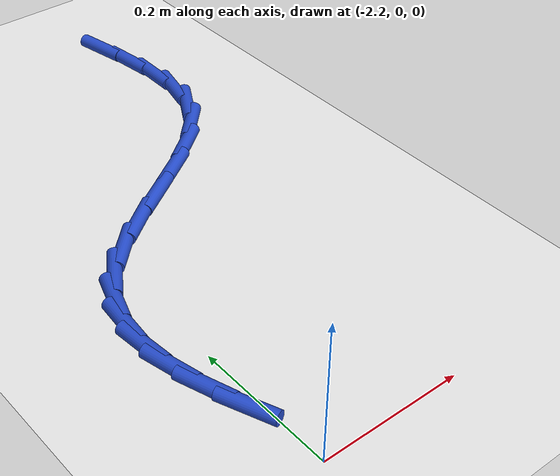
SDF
<sdf version="1.6">
 <world name="default">
  <model name="ground_plane">
   <static>1</static>
   <link name="link">
    <collision name="collision">
     <geometry><plane><normal>0 0 1</normal><size>100 100</size></plane></geometry>
     <surface><friction><ode><mu>100</mu><mu2>50</mu2></ode></friction></surface>
    </collision>
    <visual name="visual">
     <cast_shadows>0</cast_shadows>
     <geometry><plane><normal>0 0 1</normal><size>100 100</size></plane></geometry>
     <material>
      <script><uri>file://media/materials/scripts/gazebo.material</uri><name>Gazebo/WhiteGlow</name></script>
     </material>
    </visual>
   </link>
  </model>
  <model name="line">
   <link name="link_53">
    <pose>-1.9112662485996392 0.8600982613227794 0.01 0 1.57 -1.3769821323612723</pose>
    <collision name="collision">
     <geometry><cylinder><radius>0.01</radius><length>0.08</length></cylinder></geometry>
    </collision>
    <visual name="visual">
     <material>
      <script><name>Gazebo/Blue</name><uri>file://media/materials/scripts/gazebo.material</uri></script>
     </material>
     <geometry><cylinder><radius>0.01</radius><length>0.08</length></cylinder></geometry>
    </visual>
   </link>
   <link name="link_54">
    <pose>-1.8994473148128097 0.7998829953209661 0.01 0 1.57 -1.4437243510443445</pose>
    <collision name="collision">
     <geometry><cylinder><radius>0.01</radius><length>0.08</length></cylinder></geometry>
    </collision>
    <visual name="visual">
     <material>
      <script><name>Gazebo/Blue</name><uri>file://media/materials/scripts/gazebo.material</uri></script>
     </material>
     <geometry><cylinder><radius>0.01</radius><length>0.08</length></cylinder></geometry>
    </visual>
   </link>
   <link name="link_55">
    <pose>-1.8920790514987167 0.7422104726554709 0.01 0 1.57 1.5618061177882698</pose>
    <collision name="collision">
     <geometry><cylinder><radius>0.01</radius><length>0.08</length></cylinder></geometry>
    </collision>
    <visual name="visual">
     <material>
      <script><name>Gazebo/Blue</name><uri>file://media/materials/scripts/gazebo.material</uri></script>
     </material>
     <geometry><cylinder><radius>0.01</radius><length>0.08</length></cylinder></geometry>
    </visual>
   </link>
   <link name="link_56">
    <pose>-1.892566571162664 0.6879840882510012 0.01 0 1.57 1.3394646800558065</pose>
    <collision name="collision">
     <geometry><cylinder><radius>0.01</radius><length>0.08</length></cylinder></geometry>
    </collision>
    <visual name="visual">
     <material>
      <script><name>Gazebo/Blue</name><uri>file://media/materials/scripts/gazebo.material</uri></script>
     </material>
     <geometry><cylinder><radius>0.01</radius><length>0.08</length></cylinder></geometry>
    </visual>
   </link>
   <link name="link_57">
    <pose>-1.9043149863099567 0.6381072370322626 0.01 0 1.57 1.040786274864794</pose>
    <collision name="collision">
     <geometry><cylinder><radius>0.01</radius><length>0.08</length></cylinder></geometry>
    </collision>
    <visual name="visual">
     <material>
      <script><name>Gazebo/Blue</name><uri>file://media/materials/scripts/gazebo.material</uri></script>
     </material>
     <geometry><cylinder><radius>0.01</radius><length>0.08</length></cylinder></geometry>
    </visual>
   </link>
   <link name="link_58">
    <pose>-1.9304994852530675 0.5934184927974565 0.01 0 1.57 0.7875707036933844</pose>
    <collision name="collision">
     <geometry><cylinder><radius>0.01</radius><length>0.08</length></cylinder></geometry>
    </collision>
    <visual name="visual">
     <material>
      <script><name>Gazebo/Blue</name><uri>file://media/materials/scripts/gazebo.material</uri></script>
     </material>
     <geometry><cylinder><radius>0.01</radius><length>0.08</length></cylinder></geometry>
    </visual>
   </link>
   <link name="link_59">
    <pose>-1.9701558583655765 0.5535894341097335 0.01 0 1.57 0.6418659208136365</pose>
    <collision name="collision">
     <geometry><cylinder><radius>0.01</radius><length>0.08</length></cylinder></geometry>
    </collision>
    <visual name="visual">
     <material>
      <script><name>Gazebo/Blue</name><uri>file://media/materials/scripts/gazebo.material</uri></script>
     </material>
     <geometry><cylinder><radius>0.01</radius><length>0.08</length></cylinder></geometry>
    </visual>
   </link>
   <link name="link_60">
    <pose>-2.018733128095006 0.5172804439089392 0.01 0 1.57 0.5740225865184843</pose>
    <collision name="collision">
     <geometry><cylinder><radius>0.01</radius><length>0.08</length></cylinder></geometry>
    </collision>
    <visual name="visual">
     <material>
      <script><name>Gazebo/Blue</name><uri>file://media/materials/scripts/gazebo.material</uri></script>
     </material>
     <geometry><cylinder><radius>0.01</radius><length>0.08</length></cylinder></geometry>
    </visual>
   </link>
   <link name="link_61">
    <pose>-2.0715616306568503 0.48311844464880666 0.01 0 1.57 0.5672209846844791</pose>
    <collision name="collision">
     <geometry><cylinder><radius>0.01</radius><length>0.08</length></cylinder></geometry>
    </collision>
    <visual name="visual">
     <material>
      <script><name>Gazebo/Blue</name><uri>file://media/materials/scripts/gazebo.material</uri></script>
     </material>
     <geometry><cylinder><radius>0.01</radius><length>0.08</length></cylinder></geometry>
    </visual>
   </link>
   <link name="link_62">
    <pose>-2.123971702266603 0.4497303587830698 0.01 0 1.57 0.6228450337936121</pose>
    <collision name="collision">
     <geometry><cylinder><radius>0.01</radius><length>0.08</length></cylinder></geometry>
    </collision>
    <visual name="visual">
     <material>
      <script><name>Gazebo/Blue</name><uri>file://media/materials/scripts/gazebo.material</uri></script>
     </material>
     <geometry><cylinder><radius>0.01</radius><length>0.08</length></cylinder></geometry>
    </visual>
   </link>
   <link name="link_63">
    <pose>-2.17129367913976 0.41574310876546167 0.01 0 1.57 0.7631187010094361</pose>
    <collision name="collision">
     <geometry><cylinder><radius>0.01</radius><length>0.08</length></cylinder></geometry>
    </collision>
    <visual name="visual">
     <material>
      <script><name>Gazebo/Blue</name><uri>file://media/materials/scripts/gazebo.material</uri></script>
     </material>
     <geometry><cylinder><radius>0.01</radius><length>0.08</length></cylinder></geometry>
    </visual>
   </link>
   <link name="link_64">
    <pose>-2.2088854138964997 0.37979018072035164 0.01 0 1.57 0.9925573642246486</pose>
    <collision name="collision">
     <geometry><cylinder><radius>0.01</radius><length>0.08</length></cylinder></geometry>
    </collision>
    <visual name="visual">
     <material>
      <script><name>Gazebo/Blue</name><uri>file://media/materials/scripts/gazebo.material</uri></script>
     </material>
     <geometry><cylinder><radius>0.01</radius><length>0.08</length></cylinder></geometry>
    </visual>
   </link>
   <link name="link_65">
    <pose>-2.23419898649164 0.3410046107175579 0.01 0 1.57 1.2460910407652783</pose>
    <collision name="collision">
     <geometry><cylinder><radius>0.01</radius><length>0.08</length></cylinder></geometry>
    </collision>
    <visual name="visual">
     <material>
      <script><name>Gazebo/Blue</name><uri>file://media/materials/scripts/gazebo.material</uri></script>
     </material>
     <geometry><cylinder><radius>0.01</radius><length>0.08</length></cylinder></geometry>
    </visual>
   </link>
   <link name="link_66">
    <pose>-2.2482168544438603 0.2993615592182069 0.01 0 1.57 1.4800525581453596</pose>
    <collision name="collision">
     <geometry><cylinder><radius>0.01</radius><length>0.08</length></cylinder></geometry>
    </collision>
    <visual name="visual">
     <material>
      <script><name>Gazebo/Blue</name><uri>file://media/materials/scripts/gazebo.material</uri></script>
     </material>
     <geometry><cylinder><radius>0.01</radius><length>0.08</length></cylinder></geometry>
    </visual>
   </link>
   <link name="link_67">
    <pose>-2.2522610115860053 0.254917178533936 0.01 0 1.57 -1.4734654494296775</pose>
    <collision name="collision">
     <geometry><cylinder><radius>0.01</radius><length>0.08</length></cylinder></geometry>
    </collision>
    <visual name="visual">
     <material>
      <script><name>Gazebo/Blue</name><uri>file://media/materials/scripts/gazebo.material</uri></script>
     </material>
     <geometry><cylinder><radius>0.01</radius><length>0.08</length></cylinder></geometry>
    </visual>
   </link>
   <link name="link_68">
    <pose>-2.247653451750923 0.20772762097638142 0.01 0 1.57 -1.335887949740576</pose>
    <collision name="collision">
     <geometry><cylinder><radius>0.01</radius><length>0.08</length></cylinder></geometry>
    </collision>
    <visual name="visual">
     <material>
      <script><name>Gazebo/Blue</name><uri>file://media/materials/scripts/gazebo.material</uri></script>
     </material>
     <geometry><cylinder><radius>0.01</radius><length>0.08</length></cylinder></geometry>
    </visual>
   </link>
   <link name="link_69">
    <pose>-2.235716168771457 0.15784903885718057 0.01 0 1.57 -1.2415032483762682</pose>
    <collision name="collision">
     <geometry><cylinder><radius>0.01</radius><length>0.08</length></cylinder></geometry>
    </collision>
    <visual name="visual">
     <material>
      <script><name>Gazebo/Blue</name><uri>file://media/materials/scripts/gazebo.material</uri></script>
     </material>
     <geometry><cylinder><radius>0.01</radius><length>0.08</length></cylinder></geometry>
    </visual>
   </link>
   <link name="link_70">
    <pose>-2.2177711564804556 0.1053375844879695 0.01 0 1.57 -1.1810062492771167</pose>
    <collision name="collision">
     <geometry><cylinder><radius>0.01</radius><length>0.08</length></cylinder></geometry>
    </collision>
    <visual name="visual">
     <material>
      <script><name>Gazebo/Blue</name><uri>file://media/materials/scripts/gazebo.material</uri></script>
     </material>
     <geometry><cylinder><radius>0.01</radius><length>0.08</length></cylinder></geometry>
    </visual>
   </link>
  </model>
 </world>
</sdf>
